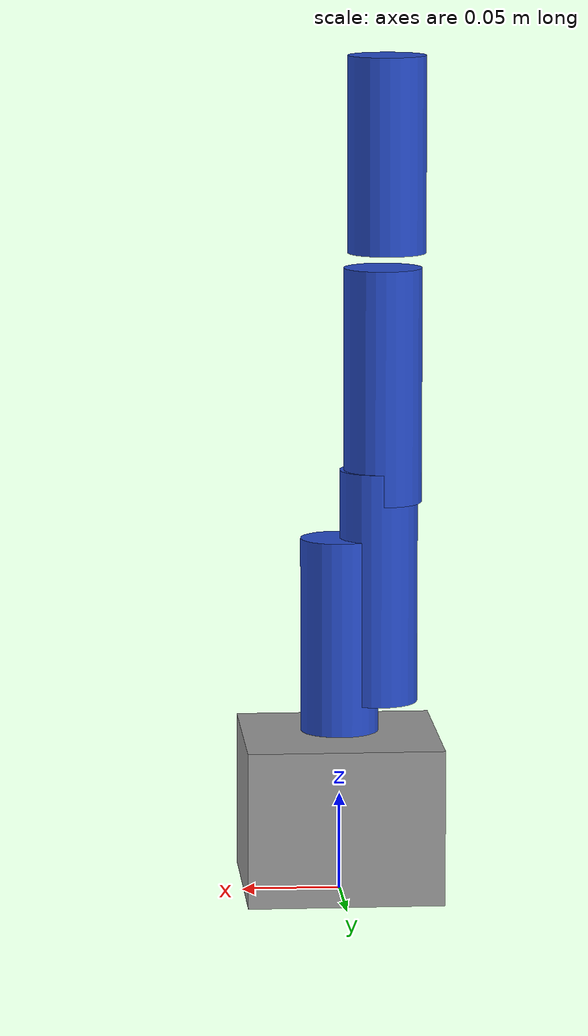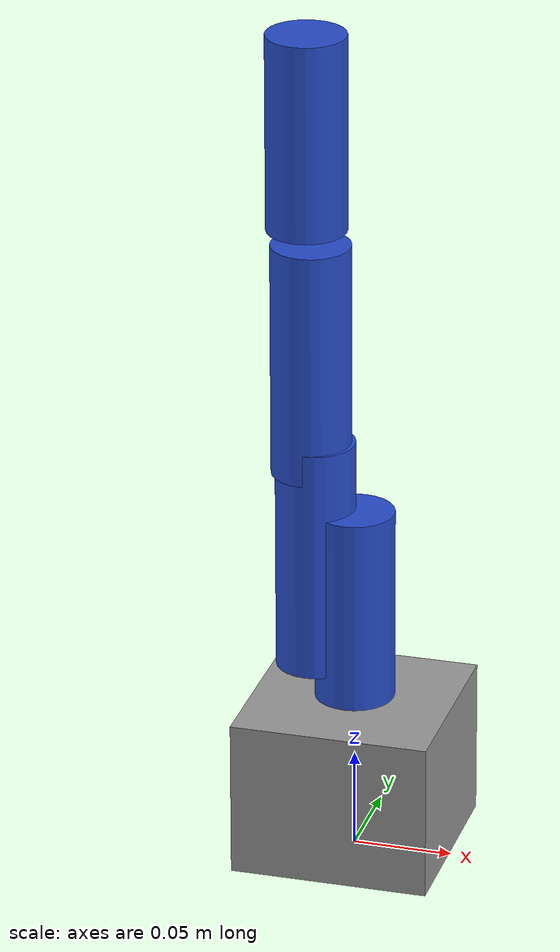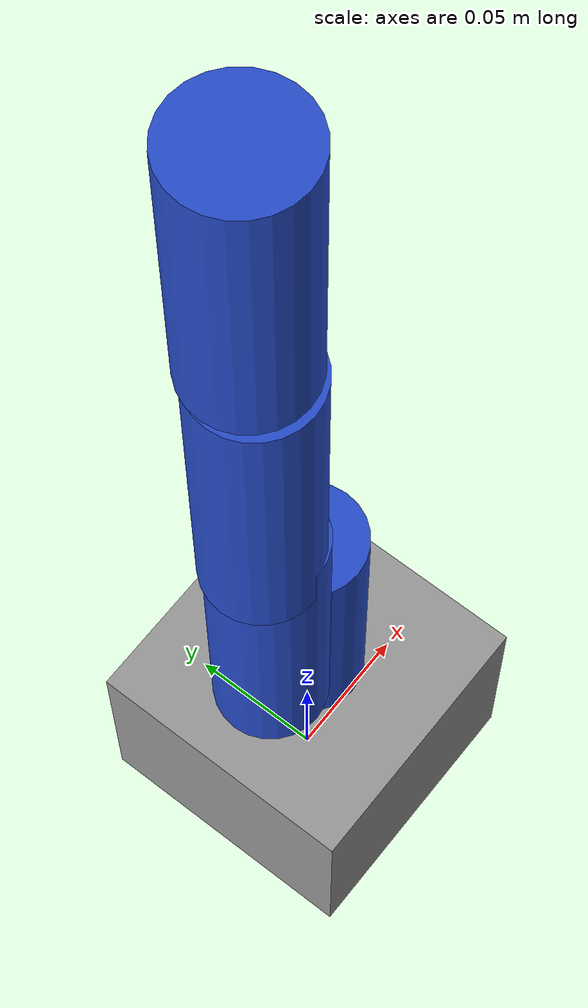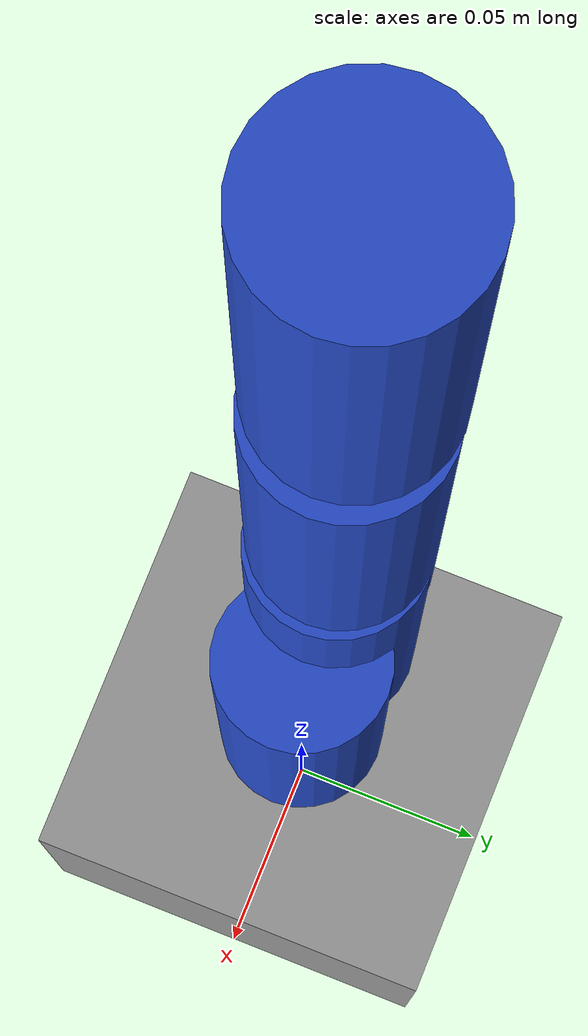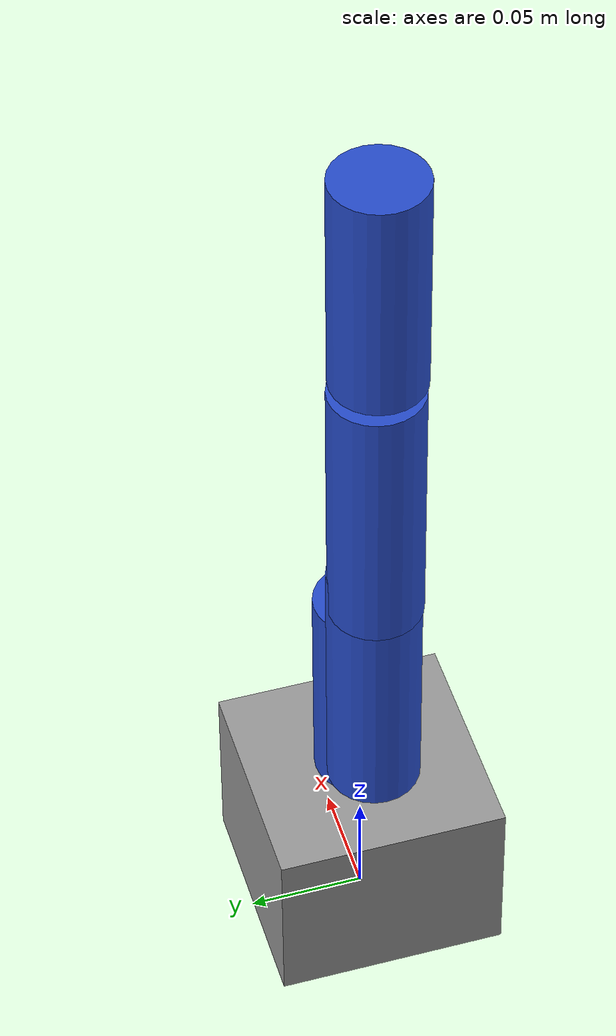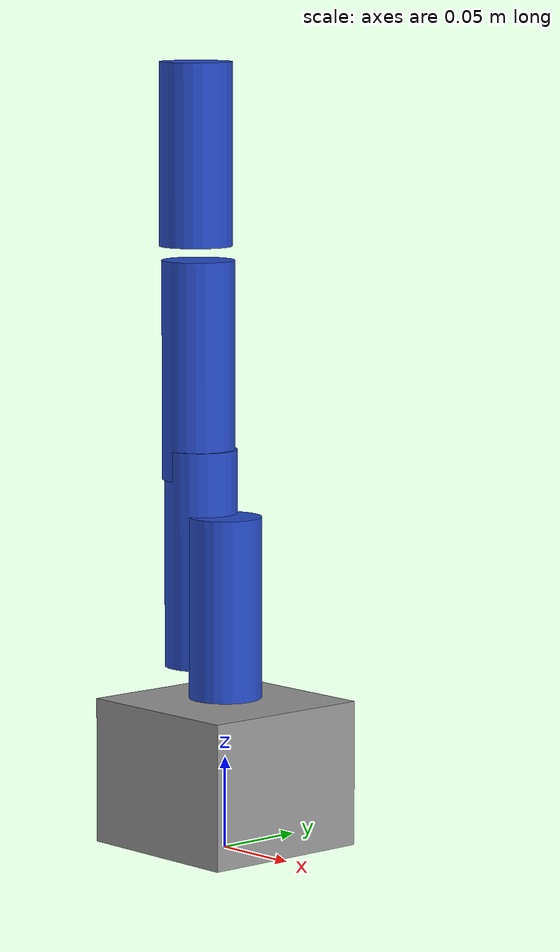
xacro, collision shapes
<?xml version="1.0"?>
<robot xmlns:xacro="http://www.ros.org/wiki/xacro">

  <!-- properties -->
  <xacro:property name="mesh_prefix" value="package://arm_description/meshes"/>
  <xacro:property name="limit_lower" value="-1.54"/>
  <xacro:property name="limit_upper" value="1.54"/>
  <xacro:property name="limit_effort" value="100"/>
  <xacro:property name="limit_velocity" value="3.14"/>
  <xacro:property name="inertia_val" value="0.0001"/>

  <!-- ==================== LINKS ======================== -->

  <!-- Base Link -->
  <link name="base_link">
    <inertial>
      <origin xyz="0 0 0" rpy="0 0 0"/>
      <mass value="0.5"/>
      <inertia ixx="0.001" ixy="0.0" ixz="0.0" iyy="0.001" iyz="0.0" izz="0.001"/>
    </inertial>
    <visual>
      <geometry><mesh filename="${mesh_prefix}/base_link.stl"/></geometry>
      <material name="grey"/>
    </visual>
    <collision>
      <geometry><box size="0.1 0.1 0.08"/></geometry>
      <origin xyz="0 0 0.04" rpy="0 0 0"/>
    </collision>
  </link>

  <!-- Link 1 -->
  <link name="link_1">
    <inertial>
      <origin xyz="0 0 0" rpy="0 0 0"/>
      <mass value="0.2"/>
      <inertia ixx="${inertia_val}" ixy="0.0" ixz="0.0" iyy="${inertia_val}" iyz="0.0" izz="${inertia_val}"/>
    </inertial>
    <visual>
      <geometry><mesh filename="${mesh_prefix}/link_1.stl"/></geometry>
      <material name="blue"/>
    </visual>
    <collision>
      <geometry><cylinder radius="0.02" length="0.1"/></geometry>
      <origin xyz="0 0 0.05" rpy="0 0 0"/>
    </collision>
  </link>

  <!-- Link 2 -->
  <link name="link_2">
    <inertial>
      <origin xyz="0 0 0" rpy="0 0 0"/>
      <mass value="0.2"/>
      <inertia ixx="${inertia_val}" ixy="0.0" ixz="0.0" iyy="${inertia_val}" iyz="0.0" izz="${inertia_val}"/>
    </inertial>
    <visual>
      <geometry><mesh filename="${mesh_prefix}/link_2.stl"/></geometry>
      <material name="blue"/>
    </visual>
    <collision>
      <geometry><cylinder radius="0.02" length="0.12"/></geometry>
      <origin xyz="0 0 0.06" rpy="0 0 0"/>
    </collision>
  </link>

  <!-- Link 3 -->
  <link name="link_3">
    <inertial>
      <origin xyz="0 0 0" rpy="0 0 0"/>
      <mass value="0.2"/>
      <inertia ixx="${inertia_val}" ixy="0.0" ixz="0.0" iyy="${inertia_val}" iyz="0.0" izz="${inertia_val}"/>
    </inertial>
    <visual>
      <geometry><mesh filename="${mesh_prefix}/link_3.stl"/></geometry>
      <material name="blue"/>
    </visual>
    <collision>
      <geometry><cylinder radius="0.02" length="0.12"/></geometry>
      <origin xyz="0 0 0.06" rpy="0 0 0"/>
    </collision>
  </link>

  <!-- Link 4 -->
  <link name="link_4">
    <inertial>
      <origin xyz="0 0 0" rpy="0 0 0"/>
      <mass value="0.1"/>
      <inertia ixx="${inertia_val}" ixy="0.0" ixz="0.0" iyy="${inertia_val}" iyz="0.0" izz="${inertia_val}"/>
    </inertial>
    <visual>
      <geometry><mesh filename="${mesh_prefix}/link_4.stl"/></geometry>
      <material name="blue"/>
    </visual>
    <collision>
      <geometry><cylinder radius="0.02" length="0.1"/></geometry>
      <origin xyz="0 0 0.05" rpy="0 0 0"/>
    </collision>
  </link>

  <!-- Tooltip Link -->
  <link name="tool_tip">
    <inertial>
      <origin xyz="0 0 0" rpy="0 0 0"/>
      <mass value="0.01"/>
      <inertia ixx="1e-6" ixy="0.0" ixz="0.0" iyy="1e-6" iyz="0.0" izz="1e-6"/>
    </inertial>
  </link>

  <!-- ==================== JOINTS ======================= -->

  <!-- World Joint -->
  <link name="world"/>
  <joint name="world_to_base_joint" type="fixed">
    <parent link="world"/>
    <child link="base_link"/>
    <origin xyz="0 0 0.002" rpy="0 0 0"/>
  </joint>

  <!-- Joint 1 -->
  <joint name="joint_1" type="revolute">
    <parent link="base_link"/>
    <child link="link_1"/>
    <origin xyz="0 0 0.0814" rpy="0 0 0"/>
    <axis xyz="0 0 1"/>
    <limit lower="${limit_lower}" upper="${limit_upper}" effort="${limit_effort}" velocity="${limit_velocity}"/>
    <dynamics damping="0.7" friction="0.1"/>
  </joint>

  <!-- Joint 2 -->
  <joint name="joint_2" type="revolute">
    <parent link="link_1"/>
    <child link="link_2"/>
    <origin xyz="-0.02 0 0.015" rpy="0 0 0"/>
    <axis xyz="0 -1 0"/>
    <limit lower="${limit_lower}" upper="${limit_upper}" effort="${limit_effort}" velocity="${limit_velocity}"/>
    <dynamics damping="0.7" friction="0.1"/>
  </joint>

  <!-- Joint 3 -->
  <joint name="joint_3" type="revolute">
    <parent link="link_2"/>
    <child link="link_3"/>
    <origin xyz="-0.0021 0 0.1035" rpy="0 0 0"/>
    <axis xyz="0 1 0"/>
    <limit lower="${limit_lower}" upper="${limit_upper}" effort="${limit_effort}" velocity="${limit_velocity}"/>
    <dynamics damping="0.7" friction="0.1"/>
  </joint>

  <!-- Joint 4 -->
  <joint name="joint_4" type="revolute">
    <parent link="link_3"/>
    <child link="link_4"/>
    <origin xyz="-0.002 0 0.1275" rpy="0 0 0"/>
    <axis xyz="0 -1 0"/>
    <limit lower="${limit_lower}" upper="${limit_upper}" effort="${limit_effort}" velocity="${limit_velocity}"/>
    <dynamics damping="0.7" friction="0.1"/>
  </joint>

  <!-- Tooltip Joint -->
  <joint name="joint_tool" type="fixed">
    <parent link="link_4"/>
    <child link="tool_tip"/>
    <origin xyz="0.01 0 0.092" rpy="0 0 0"/>
  </joint>

</robot>
